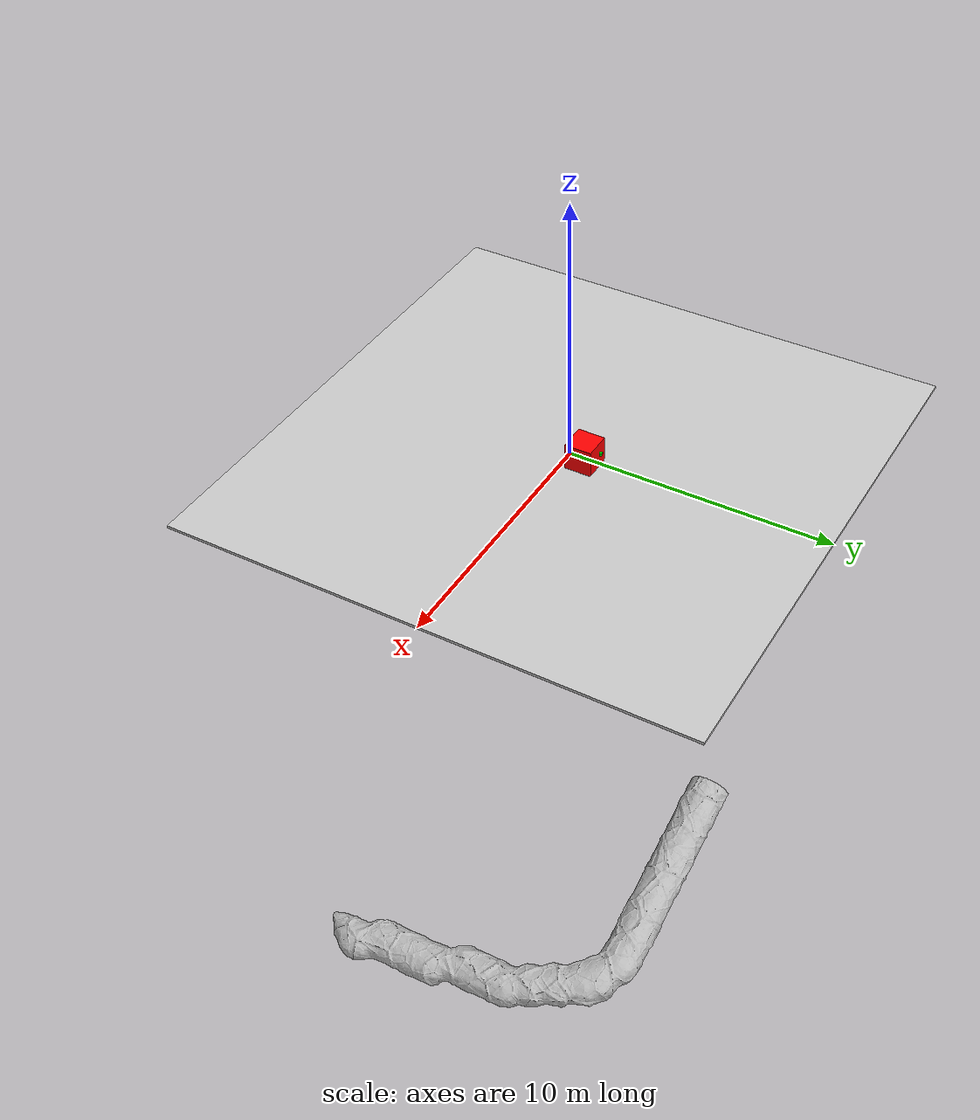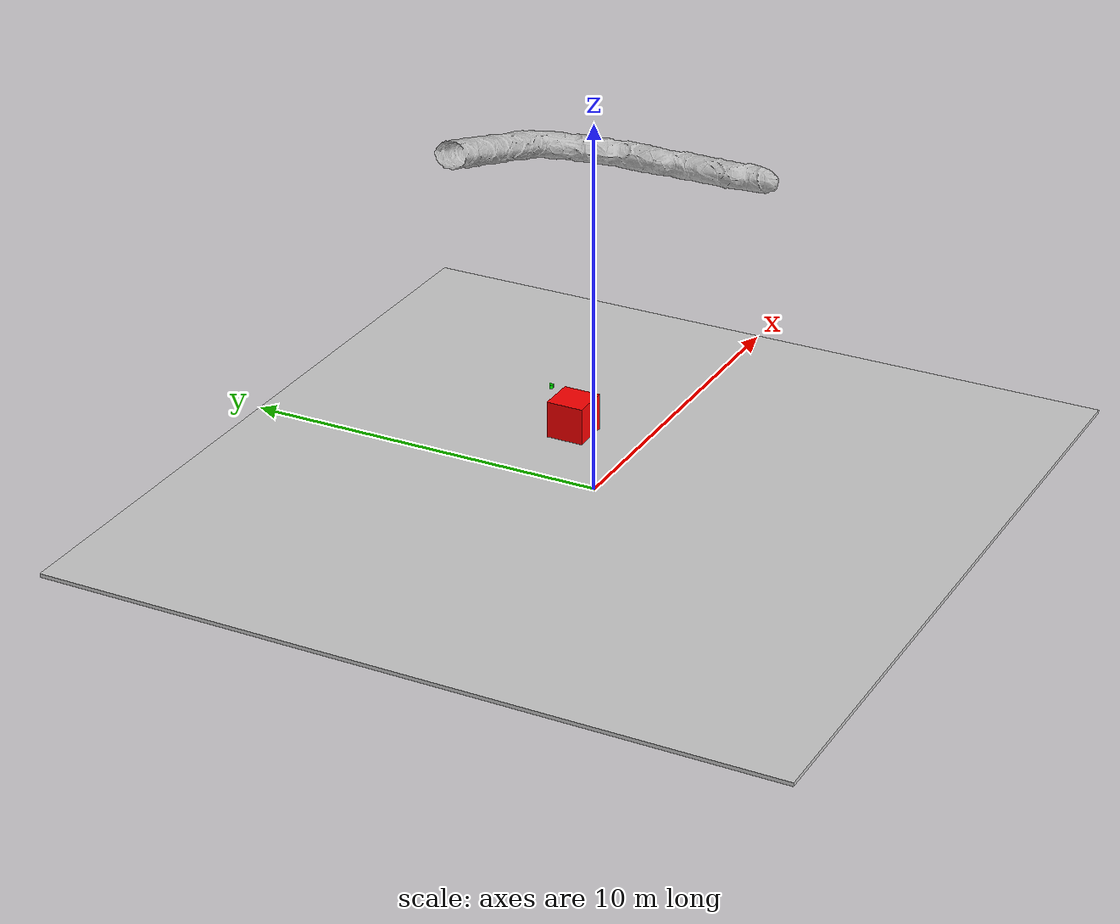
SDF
<?xml version="1.0" ?>
<sdf version="1.6">
  <world name="lidar_sensor">
    <physics name="1ms" type="ignored">
      <max_step_size>0.1</max_step_size>
      <real_time_factor>1.0</real_time_factor>
    </physics>
    <plugin
      filename="gz-sim-physics-system"
      name="gz::sim::systems::Physics">
    </plugin>
    <plugin
      filename="gz-sim-sensors-system"
      name="gz::sim::systems::Sensors">
      <render_engine>ogre2</render_engine>
    </plugin>
    <plugin
      filename="gz-sim-user-commands-system"
      name="gz::sim::systems::UserCommands">
    </plugin>
    <plugin
      filename="gz-sim-scene-broadcaster-system"
      name="gz::sim::systems::SceneBroadcaster">
    </plugin>

    <gui fullscreen="0">

      <plugin filename="MinimalScene" name="3D View">
        <gz-gui>
          <title>3D View</title>
          <property type="bool" key="showTitleBar">false</property>
          <property type="string" key="state">docked</property>
        </gz-gui>

        <engine>ogre2</engine>
        <scene>scene</scene>
        <ambient_light>0.4 0.4 0.4</ambient_light>
        <background_color>0.8 0.8 0.8</background_color>
        <camera_pose>-6 0 6 0 0.5 0</camera_pose>
      </plugin>
      <plugin filename="TransformControl" name="Transform control">
        <gz-gui>
            <title>Transform control</title>
            <anchors target="3D View">
            <line own="left" target="left"/>
            <line own="top" target="top"/>
            </anchors>
            <property key="resizable" type="bool">false</property>
            <property key="width" type="double">250</property>
            <property key="height" type="double">50</property>
            <property key="state" type="string">floating</property>
            <property key="showTitleBar" type="bool">false</property>
            <property key="cardBackground" type="string">#777777</property>
        </gz-gui>
        </plugin>

      <plugin filename="EntityContextMenuPlugin" name="Entity context menu">
        <gz-gui>
          <property key="state" type="string">floating</property>
          <property key="width" type="double">5</property>
          <property key="height" type="double">5</property>
          <property key="showTitleBar" type="bool">false</property>
        </gz-gui>
      </plugin>
      <plugin filename="GzSceneManager" name="Scene Manager">
        <gz-gui>
          <property key="resizable" type="bool">false</property>
          <property key="width" type="double">5</property>
          <property key="height" type="double">5</property>
          <property key="state" type="string">floating</property>
          <property key="showTitleBar" type="bool">false</property>
        </gz-gui>
      </plugin>
      <plugin filename="InteractiveViewControl" name="Interactive view control">
        <gz-gui>
          <property key="resizable" type="bool">false</property>
          <property key="width" type="double">5</property>
          <property key="height" type="double">5</property>
          <property key="state" type="string">floating</property>
          <property key="showTitleBar" type="bool">false</property>
        </gz-gui>
      </plugin>
      <plugin filename="CameraTracking" name="Camera Tracking">
        <gz-gui>
          <property key="resizable" type="bool">false</property>
          <property key="width" type="double">5</property>
          <property key="height" type="double">5</property>
          <property key="state" type="string">floating</property>
          <property key="showTitleBar" type="bool">false</property>
        </gz-gui>
      </plugin>
      <plugin filename="WorldControl" name="World control">
        <gz-gui>
          <title>World control</title>
          <property type="bool" key="showTitleBar">false</property>
          <property type="bool" key="resizable">false</property>
          <property type="double" key="height">72</property>
          <property type="double" key="z">1</property>

          <property type="string" key="state">floating</property>
          <anchors target="3D View">
            <line own="left" target="left"/>
            <line own="bottom" target="bottom"/>
          </anchors>
        </gz-gui>

        <play_pause>true</play_pause>
        <step>true</step>
        <start_paused>true</start_paused>
        <use_event>true</use_event>

      </plugin>

      <plugin filename="WorldStats" name="World stats">
        <gz-gui>
          <title>World stats</title>
          <property type="bool" key="showTitleBar">false</property>
          <property type="bool" key="resizable">false</property>
          <property type="double" key="height">110</property>
          <property type="double" key="width">290</property>
          <property type="double" key="z">1</property>

          <property type="string" key="state">floating</property>
          <anchors target="3D View">
            <line own="right" target="right"/>
            <line own="bottom" target="bottom"/>
          </anchors>
        </gz-gui>

        <sim_time>true</sim_time>
        <real_time>true</real_time>
        <real_time_factor>true</real_time_factor>
        <iterations>true</iterations>
      </plugin>

      <plugin filename="ComponentInspector" name="Component inspector">
        <gz-gui>
          <property type="string" key="state">docked</property>
        </gz-gui>
      </plugin>

      <plugin filename="EntityTree" name="Entity tree">
        <gz-gui>
          <property type="string" key="state">docked</property>
        </gz-gui>
      </plugin>
      <plugin filename="ImageDisplay" name="Image Display 3">
        <gz-gui>
          <title>RGBD: image</title>
          <property key="state" type="string">floating</property>
          <property type="double" key="width">350</property>
          <property type="double" key="height">315</property>
          <property type="double" key="y">320</property>
        </gz-gui>
        <topic>rgbd_camera/image</topic>
        <topic_picker>false</topic_picker>
      </plugin>
      <plugin filename="ImageDisplay" name="Image Display 3">
        <gz-gui>
          <title>RGBD: depth</title>
          <property key="state" type="string">floating</property>
          <property type="double" key="width">350</property>
          <property type="double" key="height">315</property>
          <property type="double" key="x">500</property>
          <property type="double" key="y">320</property>
        </gz-gui>
        <topic>rgbd_camera/depth_image</topic>
        <topic_picker>false</topic_picker>
      </plugin>
    </gui>

    <model name="my_cave_model">
      <static>true</static>
      <link name="link">
        <pose>-9.11 24.08 17.78 -1.56 0.29 0</pose>

        <collision name="collision">
          <geometry>
            <mesh>
              <uri>model://my_cave_model/meshes/mesh.obj</uri>
              <scale>1 1 1</scale>
            </mesh>
          </geometry>
        </collision>
        <visual name="visual">
          <geometry>
            <mesh>
              <uri>model://my_cave_model/meshes/mesh.obj</uri>
              <scale>1 1 1</scale>
            </mesh>
          </geometry>

        </visual>
      </link>
    </model>

    <model name="ground_plane">
      <static>true</static>
      <link name="link">
        <collision name="collision">
          <geometry>
            <box>
              <size>20 20 0.1</size>
            </box>
          </geometry>
        </collision>
        <visual name="visual">
          <geometry>
            <box>
              <size>20 20 0.1</size>
            </box>
          </geometry>
          <material>
            <ambient>0.8 0.8 0.8 1</ambient>
            <diffuse>0.8 0.8 0.8 1</diffuse>
            <specular>0.8 0.8 0.8 1</specular>
          </material>
        </visual>
      </link>
    </model>

    <model name="box">
      <static>true</static>
      <pose>1.16 1.19 1.31 0 0 0</pose>
      <link name="box_link">
        <inertial>
          <inertia>
            <ixx>1</ixx>
            <ixy>0</ixy>
            <ixz>0</ixz>
            <iyy>1</iyy>
            <iyz>0</iyz>
            <izz>1</izz>
          </inertia>
          <mass>1.0</mass>
        </inertial>
        <collision name="box_collision">
          <geometry>
            <box>
              <size>1 1 1</size>
            </box>
          </geometry>
        </collision>

        <visual name="box_visual">
          <geometry>
            <box>
              <size>1 1 1</size>
            </box>
          </geometry>
          <material>
            <ambient>1 0 0 1</ambient>
            <diffuse>1 0 0 1</diffuse>
            <specular>1 0 0 1</specular>
          </material>
        </visual>
      </link>
    </model>

    <model name="animated_rgbd_camera">
  <static>true</static>
  <pose>1.51 2 1.82 0 0 0.34</pose>

  <link name="link">
    <visual name="visual">
      <geometry>
        <box>
          <size>0.1 0.1 0.1</size>
        </box>
      </geometry>
      <material>
        <ambient>0 1 0 1</ambient>
        <diffuse>0 1 0 1</diffuse>
      </material>
    </visual>

    <light type="point" name="actor_light_1">
      <pose>0 0 0 0 0 0</pose>
      <diffuse>1.0 0.6 0 1</diffuse>
      <specular>0.01 0.01 0.01 1</specular>
      <attenuation>
        <range>10</range>
        <constant>0.5</constant>
        <linear>0.01</linear>
        <quadratic>5</quadratic>
      </attenuation>
      <cast_shadows>true</cast_shadows>
    </light>

    <sensor name="rgbd_camera" type="rgbd_camera">
      <camera>
        <horizontal_fov>1.92</horizontal_fov>
        <image>
          <width>640</width>
          <height>480</height>
        </image>
        <clip>
          <far>2</far>
        </clip>
        <distortion>
          <k1>-0.0507</k1>
          <k2>0.0</k2>
          <k3>0.0</k3>
          <p1>0.0</p1>
          <p2>0.0</p2>
          <center>0.5 0.5</center>
        </distortion>
      </camera>
      <always_on>1</always_on>
      <update_rate>15</update_rate>
      <visualize>true</visualize>
      <topic>rgbd_camera</topic>
      <enable_metrics>true</enable_metrics>
    </sensor>

  </link>
</model>
    </world>
</sdf>
